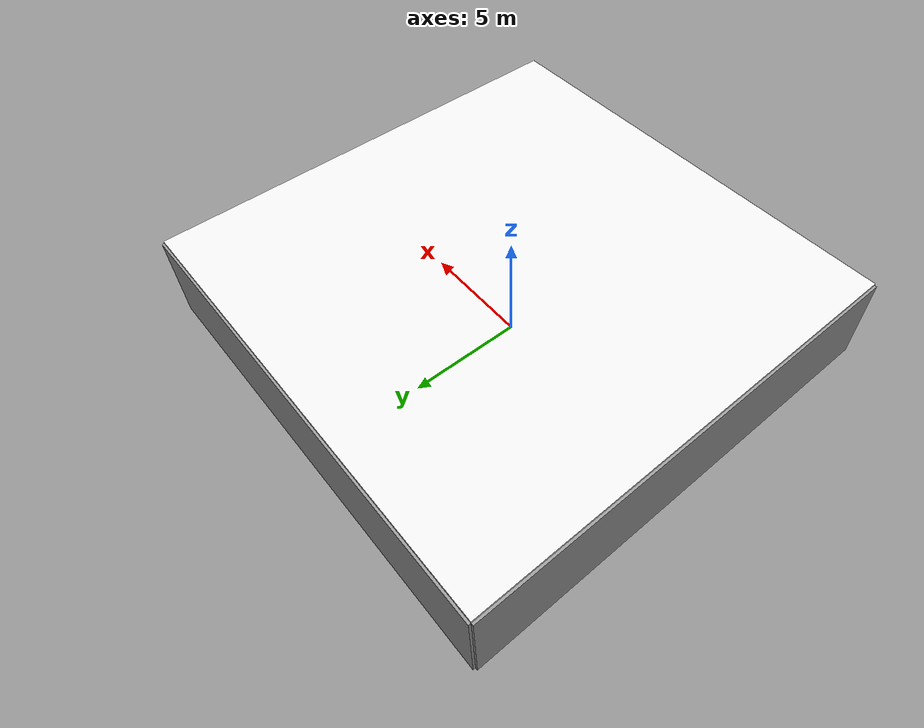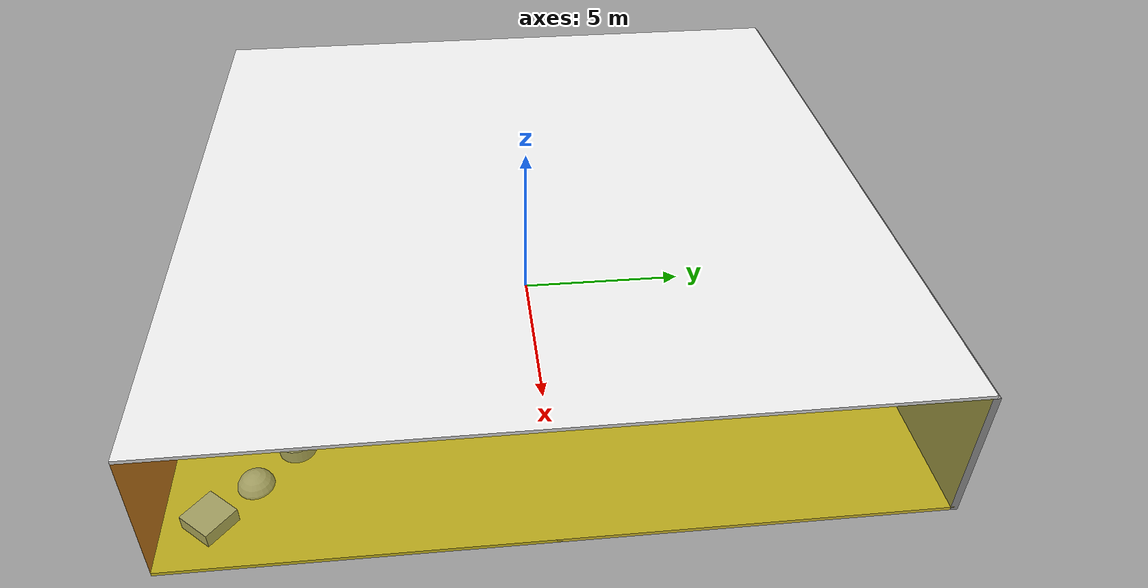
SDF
<sdf version="1.4">
 <world name="default">
  <physics type="ode">
   <max_step_size>0.001</max_step_size>
   <real_time_factor>1</real_time_factor>
   <real_time_update_rate>1000</real_time_update_rate>
   <gravity>0 0 -9.8</gravity>
  </physics>
  <scene><ambient>0.4 0.4 0.4 1</ambient><background>0.7 0.7 0.7 1</background><shadows>1</shadows></scene>
  <model name="Surrounding">
   <static>1</static>
   <link name="Ceiling">
    <collision name="Ceiling_Collision"><geometry><box><size>20 20 0.1</size></box></geometry></collision>
    <visual name="Ceiling_Visual">
     <geometry><box><size>20 20 0.1</size></box></geometry>
     <material>
      <script><uri>file://media/materials/scripts/gazebo.material</uri><name>Gazebo/WhiteGlow</name></script>
     </material>
    </visual>
    <pose>0 0 4.05 0 0 0</pose>
   </link>
   <link name="Wall_South">
    <collision name="Wall_South_Collision">
     <geometry><box><size>20 0 4</size></box></geometry>
     <pose>0 0 2 0 -0 0</pose>
    </collision>
    <visual name="Wall_South_Visual">
     <pose>0 0 2 0 -0 0</pose>
     <geometry><box><size>20 0 4</size></box></geometry>
     <material>
      <script><uri>file://media/materials/scripts/gazebo.material</uri><name>Gazebo/RedBright</name></script>
     </material>
    </visual>
    <velocity_decay><linear>0</linear><angular>0</angular></velocity_decay>
    <pose>0 -10 0 0 -0 0</pose>
   </link>
   <link name="Wall_East">
    <collision name="Wall_21_Collision">
     <geometry><box><size>20 0 4</size></box></geometry>
     <pose>0 0 2 0 -0 0</pose>
    </collision>
    <visual name="Wall_21_Visual">
     <pose>0 0 2 0 -0 0</pose>
     <geometry><box><size>20 0 4</size></box></geometry>
     <material>
      <script>
       <uri>file://media/materials/scripts/gazebo.material</uri>
       <name>Gazebo/YellowTransparent</name>
      </script>
     </material>
    </visual>
    <velocity_decay><linear>0</linear><angular>0</angular></velocity_decay>
    <pose>10 0 0 0 -0 1.5708</pose>
   </link>
   <link name="Wall_North">
    <collision name="Wall_22_Collision">
     <geometry><box><size>20 0.2 4</size></box></geometry>
     <pose>0 0 2 0 -0 0</pose>
    </collision>
    <visual name="Wall_22_Visual">
     <pose>0 0 2 0 -0 0</pose>
     <geometry><box><size>20 0.2 4</size></box></geometry>
     <material>
      <script><uri>file://media/materials/scripts/gazebo.material</uri><name>Gazebo/Grey</name></script>
     </material>
    </visual>
    <velocity_decay><linear>0</linear><angular>0</angular></velocity_decay>
    <pose>0 10 0 0 -0 0</pose>
   </link>
   <link name="Wall_West">
    <collision name="Wall_23_Collision">
     <geometry><box><size>20 0.2 4</size></box></geometry>
     <pose>0 0 2 0 -0 0</pose>
    </collision>
    <visual name="Wall_23_Visual">
     <pose>0 0 2 0 -0 0</pose>
     <geometry><box><size>20 0.2 4</size></box></geometry>
     <material>
      <script><uri>file://media/materials/scripts/gazebo.material</uri><name>Gazebo/GreyGradientSky</name></script>
     </material>
    </visual>
    <velocity_decay><linear>0</linear><angular>0</angular></velocity_decay>
    <pose>-10 0 0 0 0 -1.5708</pose>
   </link>
   <link name="Ground_link">
    <collision name="collision">
     <pose>0 0 .05 0 -0 0</pose>
     <geometry><box><size>20 20 0.1</size></box></geometry>
    </collision>
    <visual name="visual">
     <pose>0 0 .05 0 -0 0</pose>
     <geometry><box><size>20 20 0.1</size></box></geometry>
     <material>
      <script><uri>file://media/materials/scripts/gazebo.material</uri><name>Gazebo/ZincYellow</name></script>
     </material>
    </visual>
   </link>
   <static>1</static>
  </model>
  <spherical_coordinates>
   <surface_model>EARTH_WGS84</surface_model>
   <latitude_deg>0</latitude_deg>
   <longitude_deg>0</longitude_deg>
   <elevation>0</elevation>
   <heading_deg>0</heading_deg>
  </spherical_coordinates>
  <light name="lightball_0" type="diffuse">
   <diffuse>0.8 0.8 0.8 1</diffuse>
   <specular>0.2 0.2 0.2 1</specular>
   <attenuation>
    <range>100</range>
    <constant>0.7</constant>
    <linear>0.01</linear>
    <quadratic>0.001</quadratic>
   </attenuation>
   <direction>-0.5 0.1 -0.9</direction>
   <pose>7.86964690641 6.47336916131 3.06104933171 0 0 0</pose>
  </light>
  <light name="lightball_1" type="diffuse">
   <diffuse>0.8 0.8 0.8 1</diffuse>
   <specular>0.2 0.2 0.2 1</specular>
   <attenuation>
    <range>100</range>
    <constant>0.7</constant>
    <linear>0.01</linear>
    <quadratic>0.001</quadratic>
   </attenuation>
   <direction>-0.5 0.1 -0.9</direction>
   <pose>2.81064249847 -5.56570883202 2.71714959052 0 0 0</pose>
  </light>
  <light name="lightball_2" type="diffuse">
   <diffuse>0.8 0.8 0.8 1</diffuse>
   <specular>0.2 0.2 0.2 1</specular>
   <attenuation>
    <range>100</range>
    <constant>0.7</constant>
    <linear>0.01</linear>
    <quadratic>0.001</quadratic>
   </attenuation>
   <direction>-0.5 0.1 -0.9</direction>
   <pose>6.16554856733 -6.09257493656 1.64500004954 0 0 0</pose>
  </light>
  <light name="lightball_3" type="diffuse">
   <diffuse>0.8 0.8 0.8 1</diffuse>
   <specular>0.2 0.2 0.2 1</specular>
   <attenuation>
    <range>100</range>
    <constant>0.7</constant>
    <linear>0.01</linear>
    <quadratic>0.001</quadratic>
   </attenuation>
   <direction>-0.5 0.1 -0.9</direction>
   <pose>7.38209127635 -6.5911099802 0.944295020962 0 0 0</pose>
  </light>
  <include><uri>model://cabinet</uri><pose>-5.12271679443 1.47431401459 0 0 0 2.76535910956</pose></include>
  <include><uri>model://cabinet</uri><pose>3.95059078936 -6.91148722809 0 0 0 2.18128065933</pose></include>
  <include>
   <uri>model://construction_cone</uri>
   <pose>3.70794362142 -5.21856593515 0 0 0 2.78958321424</pose>
  </include>
  <include>
   <uri>model://textured_shapes</uri>
   <pose>7.54136163362 -7.79406841428 0 0 0 0.854286473313</pose>
  </include>
 </world>
</sdf>

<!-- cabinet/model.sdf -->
<sdf version="1.5">
  <model name="cabinet">
    <static>true</static>
    <link name="cabinet_bottom_plate">
      <inertial>
        <pose>0 0 -1 0 0 0</pose>
        <inertia>
          <ixx>2.050000</ixx>
          <ixy>0</ixy>
          <ixz>0</ixz>
          <iyy>2.050000</iyy>
          <iyz>0</iyz>
          <izz>2.050000</izz>
        </inertia>
        <mass>25.000000</mass>
      </inertial>
      <collision name="cabinet_bottom_plate_geom">
        <pose>0 0 0.010000 0 0 0</pose>
        <geometry>
          <box>
            <size>0.450000 0.450000 0.020000</size>
          </box>
        </geometry>
      </collision>
      <visual name="cabinet_bottom_plate_geom_visual">
        <pose>0 0 0.010000 0 0 0</pose>
        <geometry>
          <box>
            <size>0.450000 0.450000 0.020000</size>
          </box>
        </geometry>
        <material>
          <script>
            <uri>model://media/materials/scripts/gazebo.material</uri>
            <name>Gazebo/Wood</name>
          </script>
        </material>
      </visual>
      <collision name="cabinet_bottom_plate_geom_cabinet_back_plate">
        <pose>0.235000 0 0.510000 0 0 0</pose>
        <geometry>
          <box>
            <size>0.020000 0.450000 1.020000</size>
          </box>
        </geometry>
      </collision>
      <visual name="cabinet_bottom_plate_geom_cabinet_back_plate_visual">
        <pose>0.235000 0 0.510000 0 0 0</pose>
        <geometry>
          <box>
            <size>0.020000 0.450000 1.020000</size>
          </box>
        </geometry>
        <material>
          <script>
            <uri>model://media/materials/scripts/gazebo.material</uri>
            <name>Gazebo/Wood</name>
          </script>
        </material>
      </visual>
      <collision name="cabinet_bottom_plate_geom_cabinet_left_plate">
        <pose>0 0.235000 0.510000 0 0 0</pose>
        <geometry>
          <box>
            <size>0.450000 0.020000 1.020000</size>
          </box>
        </geometry>
      </collision>
      <visual name="cabinet_bottom_plate_geom_cabinet_left_plate_visual">
        <pose>0 0.235000 0.510000 0 0 0</pose>
        <geometry>
          <box>
            <size>0.450000 0.020000 1.020000</size>
          </box>
        </geometry>
        <material>
          <script>
            <uri>model://media/materials/scripts/gazebo.material</uri>
            <name>Gazebo/Wood</name>
          </script>
        </material>
      </visual>
      <collision name="cabinet_bottom_plate_geom_cabinet_middle_plate">
        <pose>0 0 0.510000 0 0 0</pose>
        <geometry>
          <box>
            <size>0.450000 0.450000 0.020000</size>
          </box>
        </geometry>
      </collision>
      <visual name="cabinet_bottom_plate_geom_cabinet_middle_plate_visual">
        <pose>0 0 0.510000 0 0 0</pose>
        <geometry>
          <box>
            <size>0.450000 0.450000 0.020000</size>
          </box>
        </geometry>
        <material>
          <script>
            <uri>model://media/materials/scripts/gazebo.material</uri>
            <name>Gazebo/Wood</name>
          </script>
        </material>
      </visual>
      <collision name="cabinet_bottom_plate_geom_cabinet_right_plate">
        <pose>0 -0.235000 0.510000 0 0 0</pose>
        <geometry>
          <box>
            <size>0.450000 0.020000 1.020000</size>
          </box>
        </geometry>
      </collision>
      <visual name="cabinet_bottom_plate_geom_cabinet_right_plate_visual">
        <pose>0 -0.235000 0.510000 0 0 0</pose>
        <geometry>
          <box>
            <size>0.450000 0.020000 1.020000</size>
          </box>
        </geometry>
        <material>
          <script>
            <uri>model://media/materials/scripts/gazebo.material</uri>
            <name>Gazebo/Wood</name>
          </script>
        </material>
      </visual>
      <collision name="cabinet_bottom_plate_geom_cabinet_top_plate">
        <pose>0 0 1.010000 0 0 0</pose>
        <geometry>
          <box>
            <size>0.450000 0.450000 0.020000</size>
          </box>
        </geometry>
      </collision>
      <visual name="cabinet_bottom_plate_geom_cabinet_top_plate_visual">
        <pose>0 0 1.010000 0 0 0</pose>
        <geometry>
          <box>
            <size>0.450000 0.450000 0.020000</size>
          </box>
        </geometry>
        <material>
          <script>
            <uri>model://media/materials/scripts/gazebo.material</uri>
            <name>Gazebo/Wood</name>
          </script>
        </material>
      </visual>
    </link>
  </model>
</sdf>

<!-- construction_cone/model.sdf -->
<sdf version="1.5">
  <model name="Construction Cone">
    <link name="link">
      <collision name="collision">
        <geometry>
          <mesh>
            <scale>10 10 10</scale>
            <uri>file://isr-testbed/construction_cone/meshes/construction_cone.dae</uri>
          </mesh>
        </geometry>
      </collision>
      <visual name="visual">
        <geometry>
          <mesh>
            <scale>10 10 10</scale>
            <uri>file://isr-testbed/construction_cone/meshes/construction_cone.dae</uri>
          </mesh>
        </geometry>
      </visual>
    </link>
  </model>
</sdf>

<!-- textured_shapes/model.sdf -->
<sdf version="1.6">
  <model name="textured_shapes">
    <pose>0 0 0.5 0 0 0</pose>
    <link name="box">
      <pose>0 -1.5 0 0 0 0</pose>
      <collision name="collision">
        <geometry>
          <box>
            <size>1 1 1</size>
          </box>
        </geometry>
      </collision>
      <visual name="visual">
        <geometry>
          <box>
            <size>1 1 1</size>
          </box>
        </geometry>
        <material>
          <script>
            <uri>model://../model_source/models/textured_shapes/materials/scripts</uri>
            <uri>model://../model_source/models/textured_shapes/materials/textures</uri>
            <name>TexturedShape/Squares</name>
          </script>
        </material>
      </visual>
    </link>
    <link name="sphere">
      <collision name="collision">
        <geometry>
          <sphere>
            <radius>0.5</radius>
          </sphere>
        </geometry>
      </collision>
      <visual name="visual">
        <geometry>
          <sphere>
            <radius>0.5</radius>
          </sphere>
        </geometry>
        <material>
          <script>
            <uri>model://../model_source/models/textured_shapes/materials/scripts</uri>
            <uri>model://../model_source/models/textured_shapes/materials/textures</uri>
            <name>TexturedShape/Squares</name>
          </script>
        </material>
      </visual>
    </link>
    <link name="cylinder">
      <pose>0 1.5 0 0 0 0</pose>
      <collision name="collision">
        <geometry>
          <cylinder>
            <radius>0.5</radius>
            <length>1</length>
          </cylinder>
        </geometry>
      </collision>
      <visual name="visual">
        <geometry>
          <cylinder>
            <radius>0.5</radius>
            <length>1</length>
          </cylinder>
        </geometry>
        <material>
          <script>
            <uri>model://../model_source/models/textured_shapes/materials/scripts</uri>
            <uri>model://../model_source/models/textured_shapes/materials/textures</uri>
            <name>TexturedShape/Squares</name>
          </script>
        </material>
      </visual>
    </link>
  </model>
</sdf>
